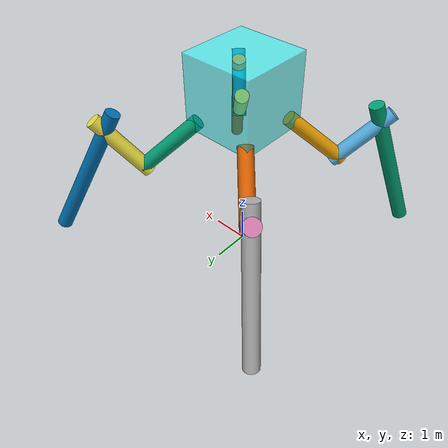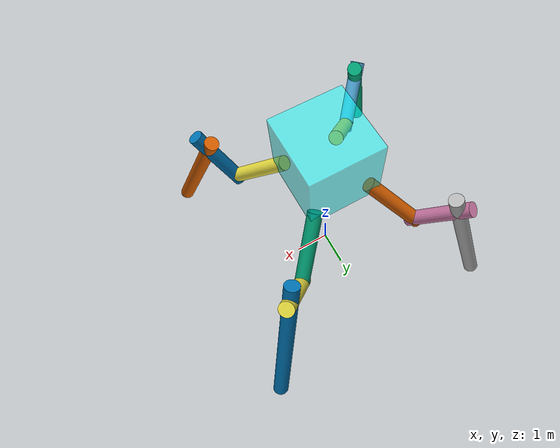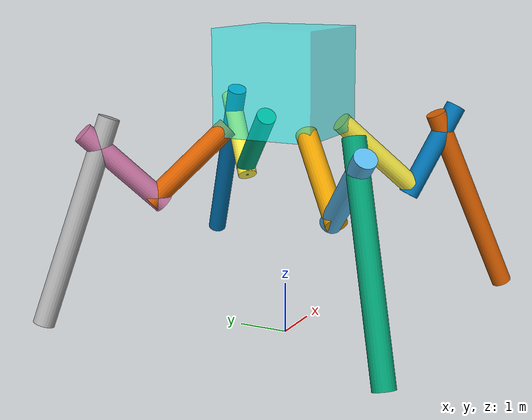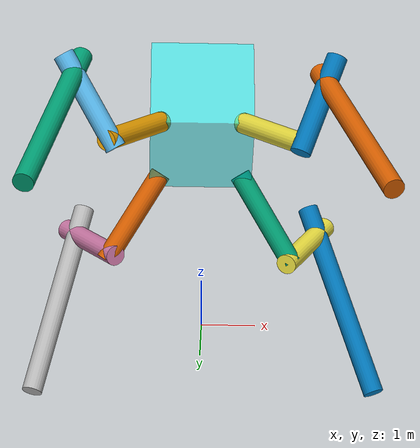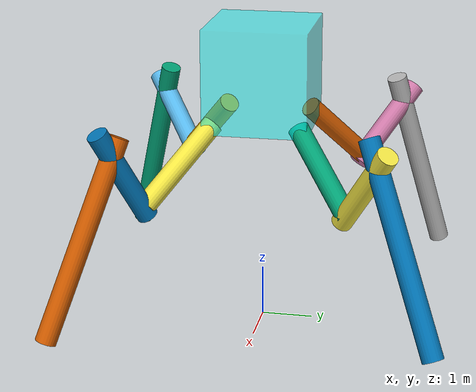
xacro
<?xml version="1.0" encoding="utf-8"?>
<robot xmlns:xacro="http://www.ros.org/wiki/xacro" name="spider_robot">

	<gazebo>
	  <plugin name="gazebo_ros_control" filename="libgazebo_ros_control.so">
		<robotNamespace>/spider_robot</robotNamespace>
	  </plugin>
	</gazebo>

	<transmission name="simple_trans">
	  <type>transmission_interface/SimpleTransmission</type>
	  <joint name="leg1_leg11">
		<hardwareInterface>EffortJointInterface</hardwareInterface>
	  </joint>
	  <actuator name="leg_1">
		<mechanicalReduction>50</mechanicalReduction>
		<hardwareInterface>EffortJointInterface</hardwareInterface>
	  </actuator>
	</transmission>

    <link name ="world"/>

    <link name="base_link">
		<visual>
		    <origin xyz="0 0 5"/>

			<geometry>
				<box size="2 2 2"/>
			</geometry>
			<material name="Cyan">
				<color rgba="0 1 1 0.5"/>
			</material>
		</visual>
		<inertial>
      		<mass value="10"/>
      		<inertia ixx="0.4" ixy="0.0" ixz="0.0" iyy="0.4" iyz="0.0" izz="0.2"/>
    	</inertial>
		<collision>
      		<geometry>
        		<box size="0.3 0.25 0.6"/>
      		</geometry>
    	</collision>
	</link>

    <joint name="world_to_base" type="fixed">
		<parent link = "world"/>
		<child link = "base_link"/>
	</joint>

	<xacro:macro name="link_cylinder" params="name radius length">
		<link name="${name}">
		<visual>

			<geometry>
				<cylinder radius="${radius}" length="${length}"/>
			</geometry>

		</visual>
		</link>
	</xacro:macro>

	<xacro:macro name="fixed_joint" params="name parent child coords angles">
        <joint name="${name}" type="fixed">
            <parent link="${parent}"/>
            <child link="${child}"/>
            <origin xyz="${coords}" rpy="${angles}"/>
        </joint>
    </xacro:macro>

	<xacro:property name="leg_radius" value="0.2"/>

	<link_cylinder name="leg1"  radius="${leg_radius}" length="2"/>
	<fixed_joint name="base_leg1" parent="base_link" child="leg1"
				 coords="1.3 1.35 3.5" angles="0 2.3 0.8"/>
	<link_cylinder name="leg11" radius = "${leg_radius}" length="2"/>
	<fixed_joint name="leg1_leg11" parent="leg1" child="leg11"
				 coords="-0.8 0 0.9" angles="0 1.5 0"/>
	<link_cylinder name="leg111" radius="${leg_radius}" length="4"/>
	<fixed_joint name="leg11_leg111" parent="leg11" child="leg111"
				 coords="-1.3 0 0" angles="0 2 0"/>

	<link_cylinder name="leg2"  radius="${leg_radius}" length="2"/>
	<fixed_joint name="base_leg2" parent="base_link" child="leg2"
				 coords="-1.3 1.35 3.5" angles="0 -2.3 -0.8"/>
	<link_cylinder name="leg22" radius = "${leg_radius}" length="2"/>
	<fixed_joint name="leg2_leg22" parent="leg2" child="leg22"
				 coords="0.8 0 0.9" angles="0 1.5 0"/>
	<link_cylinder name="leg222" radius="${leg_radius}" length="4"/>
	<fixed_joint name="leg22_leg222" parent="leg22" child="leg222"
				 coords="-1.3 0 0" angles="0 -2 0"/>

	<link_cylinder name="leg3"  radius="${leg_radius}" length="2"/>
	<fixed_joint name="base_leg3" parent="base_link" child="leg3"
				 coords="-1.3 -1.35 3.5" angles="0 -2.3 0.8"/>
	<link_cylinder name="leg33" radius = "${leg_radius}" length="2"/>
	<fixed_joint name="leg3_leg33" parent="leg3" child="leg33"
				 coords="0.8 0 0.9" angles="0 1.5 0"/>
	<link_cylinder name="leg333" radius="${leg_radius}" length="4"/>
	<fixed_joint name="leg33_leg333" parent="leg33" child="leg333"
				 coords="-1.3 0 0" angles="0 -2 0"/>

	<link_cylinder name="leg4"  radius="${leg_radius}" length="2"/>
	<fixed_joint name="base_leg4" parent="base_link" child="leg4"
				 coords="1.3 -1.35 3.5" angles="0 2.3 -0.8"/>
	<link_cylinder name="leg44" radius = "${leg_radius}" length="2"/>
	<fixed_joint name="leg4_leg44" parent="leg4" child="leg44"
				 coords="-0.8 0 0.9" angles="0 4.5 0"/>
	<link_cylinder name="leg444" radius="${leg_radius}" length="4"/>
	<fixed_joint name="leg44_leg444" parent="leg44" child="leg444"
				 coords="1.3 0 -0.5" angles="0 2.2 0"/>

</robot>
